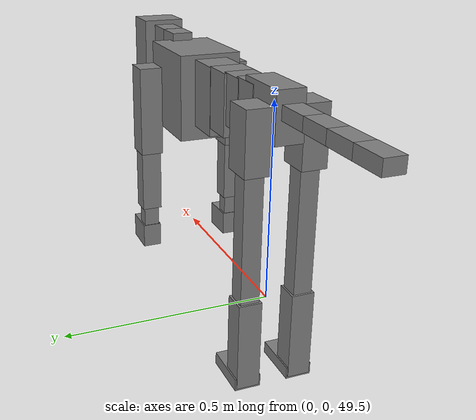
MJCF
<mujoco model="dog">

    <default>
        <joint armature="0.02" stiffness="1" damping="0.2" limited="true"/>
        <geom condim="3" friction="1 0.05 0.05" margin="0.01"/>
        <motor ctrllimited="true" ctrlrange="-1.0 1.0" forcelimited="true" gear="50"/>
    </default>

    <compiler inertiafromgeom="true" angle="radian"/>

    <option timestep="0.016" iterations="50" tolerance="1e-10" solver="Newton" jacobian="dense" cone="pyramidal"/>

    <size nconmax="20000" njmax="60000" nstack="5000000"/>
    <visual>
        <map force="0.1" zfar="30"/>
        <rgba haze="0.15 0.25 0.35 1"/>
        <quality shadowsize="2048"/>
        <global offwidth="800" offheight="800"/>
    </visual>

    <asset>
        <texture type="skybox" builtin="gradient" rgb1="0.3 0.5 0.7" rgb2="0 0 0" width="512" height="512"/>
        <texture name="texplane" type="2d" builtin="checker" rgb1=".2 .3 .4" rgb2=".1 0.15 0.2" width="512" height="512"
                 mark="cross" markrgb=".8 .8 .8"/>
        <texture name="texgeom" type="cube" builtin="flat" mark="cross" width="127" height="1278" rgb1="0.8 0.6 0.4"
                 rgb2="0.8 0.6 0.4" markrgb="1 1 1" random="0.01"/>

        <material name="matplane" reflectance="0.3" texture="texplane" texrepeat="1 1" texuniform="true"/>
        <material name="matgeom" texture="texgeom" texuniform="true" rgba="0.8 0.6 .4 1"/>
    </asset>

    <worldbody>
        <geom name="floor" pos="0 0 0" size="0 0 .25" type="plane" material="matplane" condim="3"/>

        <light directional="false" diffuse=".2 .2 .2" specular="0 0 0" pos="0 0 5" dir="0 0 -1" castshadow="false"/>
        <light mode="targetbodycom" target="torso" directional="false" diffuse=".8 .8 .8" specular="0.3 0.3 0.3"
               pos="0 0 4.0" dir="0 0 -1"/>

        <body name="root" pos="0 0 50">
            <freejoint name="root_1"/>
            <geom type="box" pos="0 0 -0.02" size="0.0774  0.0358  0.063" density="2030"/>

            <body name="spine1" pos="0.054 0 0">
                <joint name="spine1_y" axis="0 1 0" range="0 0.7" limited="true"/>
                <geom type="box" pos="0.02375 0 -0.03" size="0.04375  0.0375  0.05985" density="2030"/>

                <body name="spine2" pos="0.0612 0 0">
                    <joint name="spine2_y" axis="0 1 0" range="-0.15 0.15" limited="true"/>
                    <geom type="box" pos="0.03555  0  -0.04" size="0.04055  0.039  0.06615" density="2030"/>

                    <body name="spine3" pos="0.0730 0 0">
                        <joint name="spine3_y" axis="0 1 0" range="-0.15 0.15" limited="true"/>
                        <geom type="box" pos="0.03555  0  -0.057" size="0.04555  0.0445  0.081" density="2030"/>

                        <body name="spine4" pos="0.0780 0 0">
                            <joint name="spine4_y" axis="0 1 0" range="-0.15 0.15" limited="true"/>
                            <geom type="box" pos="0.05265  0  -0.07" size="0.05265  0.045  0.09135" density="2030"/>

                            <body name="torso" pos="0.1082 0 0">
                                <joint name="torso_y" axis="0 1 0" range="-0.15 0.15" limited="true"/>
                                <geom type="box" pos="0.11925  0  -0.085" size="0.11925  0.085  0.11745"
                                      density="2030"/>

                                <body name="neck1" pos="0.2160  0   0.0180">
                                    <joint name="neck1_y" axis="0 1 0" range="-1.2  -1" limited="true"/>
                                    <geom type="box" pos="0.0423  0  0" size="0.0423  0.03  0.036" density="2325"/>

                                    <body name="neck2" pos="0.0853  0  0">
                                        <joint name="neck2_y" axis="0 1 0" range="0.1  0" limited="true"/>
                                        <geom type="box" pos="0.0423  0  0" size="0.0423  0.03  0.036" density="2325"/>

                                        <body name="head" pos="0.0853  0  0">
                                            <joint name="head_y" axis="0 1 0" range="-0.3  -0.2" limited="true"/>
                                            <geom type="box" pos="0.0531  0  -0.055" size="0.0531  0.06  0.1044"
                                                  density="4030"/>

                                        </body>
                                    </body>
                                </body>

                                <body name="front_shoulder" pos="0.156  0   -0.0480">
                                    <joint name="front_shoulder_y" axis="0 1 0" range="-1 1.5" limited="true"/>
                                    <geom type="box" pos="0 0.13 -0.0989" size="0.0370  0.0316  0.1255" density="1158"/>
                                    <geom type="box" pos="0 -0.13 -0.0989" size="0.0370  0.0316  0.1255"
                                          density="1158"/>

                                    <body name="front_elbow" pos="0  0  -0.1978">
                                        <joint name="front_elbow_y" axis="0 1 0" range="-2 0" limited="true"/>
                                        <geom type="box" pos="0 0.13 -0.1007" size="0.0274  0.0280  0.1007"
                                              density="1081"/>
                                        <geom type="box" pos="0 -0.13 -0.1007" size="0.0274  0.0280  0.1007"
                                              density="1081"/>

                                        <body name="front_wrist" pos="0  0  -0.2014">
                                            <joint name="front_wrist_y" axis="0 1 0" range="-0.2 0" limited="true"/>
                                            <geom type="box" pos="0 0.13 -0.0354" size="0.0196  0.0218  0.0485"
                                                  density="1664"/>
                                            <geom type="box" pos="0 -0.13 -0.0354" size="0.0196  0.0218  0.0485"
                                                  density="1664"/>

                                            <body name="front_finger_end" pos="0  0  -0.0708">
                                                <joint name="front_finger_y" axis="0 1 0" range="-0.4 1"
                                                       limited="true"/>
                                                <geom type="box" pos="0.0259  0.13  -0.0192"
                                                      size="0.0474  0.0259  0.0342" density="1515"/>
                                                <geom type="box" pos="0.0259  -0.13  -0.0192"
                                                      size="0.0474  0.0259  0.0342" density="1515"/>

                                            </body>

                                        </body>
                                    </body>
                                </body>

                            </body>
                        </body>
                    </body>
                </body>
            </body>

            <body name="back_hip" pos="-0.03 0 -0.018">
                <joint name="back_hip_y" axis="0 1 0" range="-1.5 0.3" limited="true"/>
                <geom type="box" pos="0 0.07 -0.0556" size="0.0415  0.0325  0.0784" density="1154"/>
                <geom type="box" pos="0 -0.07 -0.0556" size="0.0415  0.0325  0.0784" density="1154"/>

                <body name="back_knee" pos="0  0  -0.1112">
                    <joint name="back_knee_y" axis="0 1 0" range="0 2.8" limited="true"/>
                    <geom type="box" pos="0 0.07 -0.1790" size="0.0246  0.0242  0.1946" density="1227"/>
                    <geom type="box" pos="0 -0.07 -0.1790" size="0.0246  0.0242  0.1946" density="1227"/>

                    <body name="back_ankle" pos="0  0  -0.3581">
                        <joint name="back_ankle_y" axis="0 1 0" range="-2.2 0" limited="true"/>
                        <geom type="box" pos="0 0.07 -0.1038" size="0.0298  0.0298  0.1151" density="1284"/>
                        <geom type="box" pos="0 -0.07 -0.1038" size="0.0298  0.0298  0.1151" density="1284"/>

                        <body name="back_toe_end" pos="0  0  -0.2076">
                            <joint name="back_toe_y" axis="0 1 0" range="-0.4 1" limited="true"/>
                            <geom type="box" pos="0.0335  0.07  -0.0008" size="0.0614  0.0335  0.0158" density="1515"/>
                            <geom type="box" pos="0.0335  -0.07  -0.0008" size="0.0614  0.0335  0.0158" density="1515"/>

                        </body>
                    </body>
                </body>
            </body>

            <body name="tail1" pos="-0.074 0 -0.006">
                <joint name="tail1_y" axis="0 1 0" range="-0.2 0.2" limited="true"/>
                <geom type="box" pos="-0.0536  0  0" size="0.045  0.025  0.0175" density="1587"/>

                <body name="tail2" pos="-0.09 0 0">
                    <joint name="tail2_y" axis="0 1 0" range="-0.2 0.2" limited="true"/>
                    <geom type="box" pos="-0.0536  0  0" size="0.045  0.025  0.0175" density="1587"/>

                    <body name="tail3" pos="-0.09 0 0">
                        <joint name="tail3_y" axis="0 1 0" range="-0.2 0.2" limited="true"/>
                        <geom type="box" pos="-0.0536  0  0" size="0.045  0.025  0.0175" density="1587"/>

                        <body name="tail4" pos="-0.09 0 0">
                            <joint name="tail4_y" axis="0 1 0" range="-0.2 0.2" limited="true"/>
                            <geom type="box" pos="-0.0536  0  0" size="0.045  0.025  0.0175" density="1587"/>

                        </body>
                    </body>
                </body>
            </body>
        </body>
    </worldbody>

    <actuator>
        <motor joint="spine1_y" forcerange="-150 150     "/>
        <motor joint="spine2_y" forcerange="-150 150     "/>
        <motor joint="spine3_y" forcerange="-150 150     "/>
        <motor joint="spine4_y" forcerange="-150 150     "/>
        <motor joint="torso_y" forcerange="-150 150     "/>
        <motor joint="neck1_y" forcerange="-100 100       "/>
        <motor joint="neck2_y" forcerange="-100 100       "/>
        <motor joint="head_y" forcerange="-150 150       "/>
        <motor joint="front_shoulder_y" forcerange="-110.64 199.91"/>
        <motor joint="front_elbow_y" forcerange="-125.84 177.61"/>
        <motor joint="front_wrist_y" forcerange="-79.36 94.71"/>
        <motor joint="front_finger_y" forcerange="-38.68 59.32"/>
        <motor joint="back_hip_y" forcerange="-363.98 269.50"/>
        <motor joint="back_knee_y" forcerange="-329.80 222.91"/>
        <motor joint="back_angle_y" forcerange="-221.27 155.58"/>
        <motor joint="back_toe_y" forcerange="-105.68 82.07"/>
        <motor joint="tail1_y" forcerange="-50 50     "/>
        <motor joint="tail2_y" forcerange="-50 50     "/>
        <motor joint="tail3_y" forcerange="-50 50     "/>
        <motor joint="tail4_y" forcerange="-50 50     "/>
    </actuator>
</mujoco>
